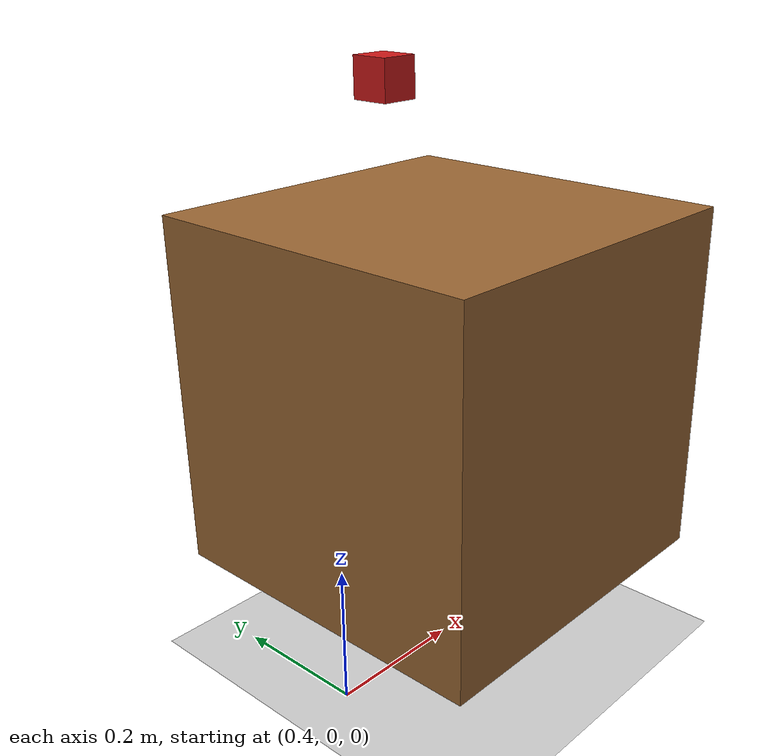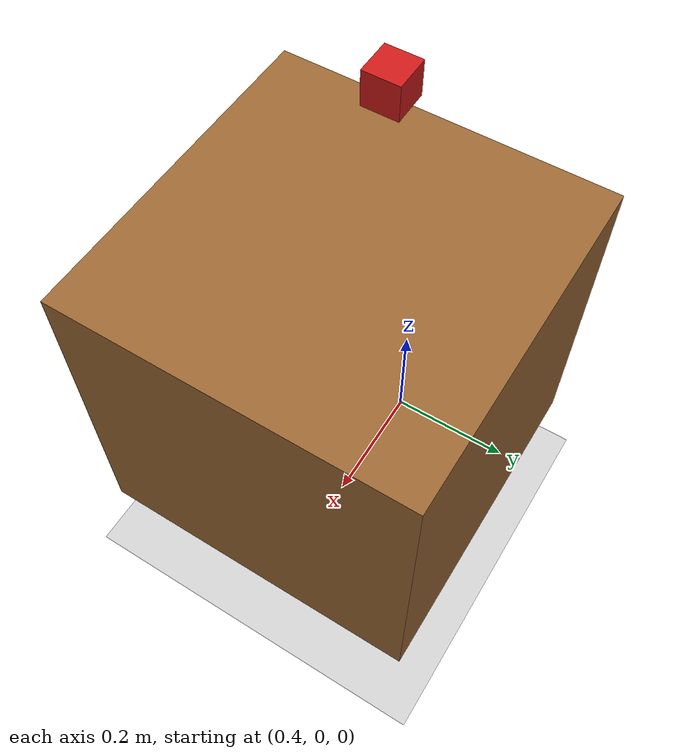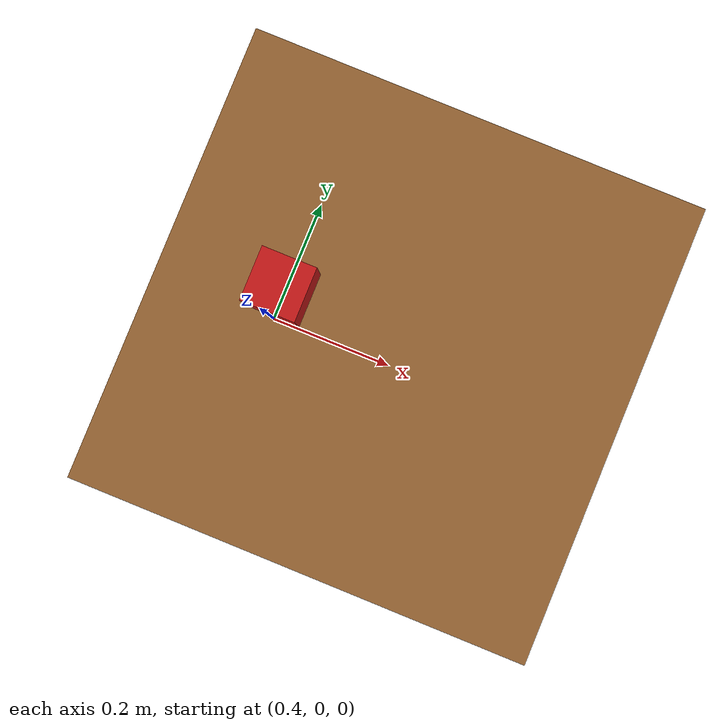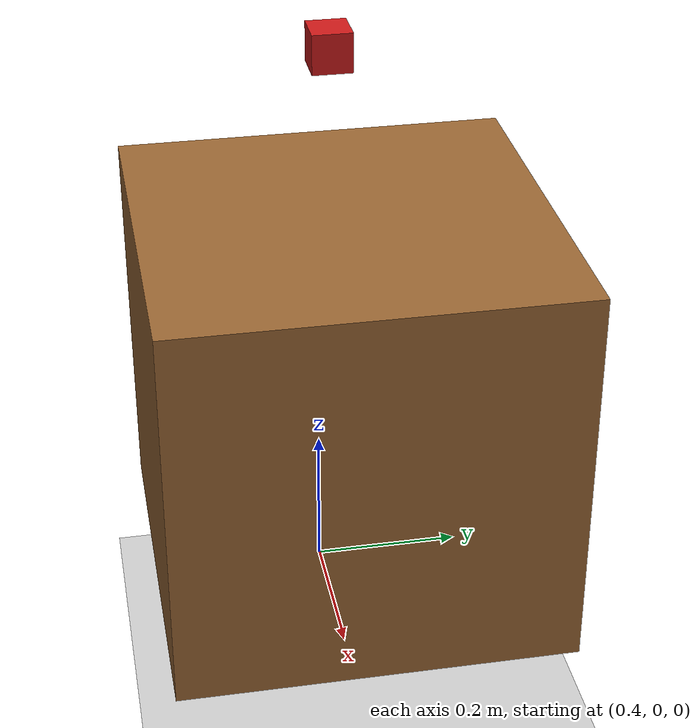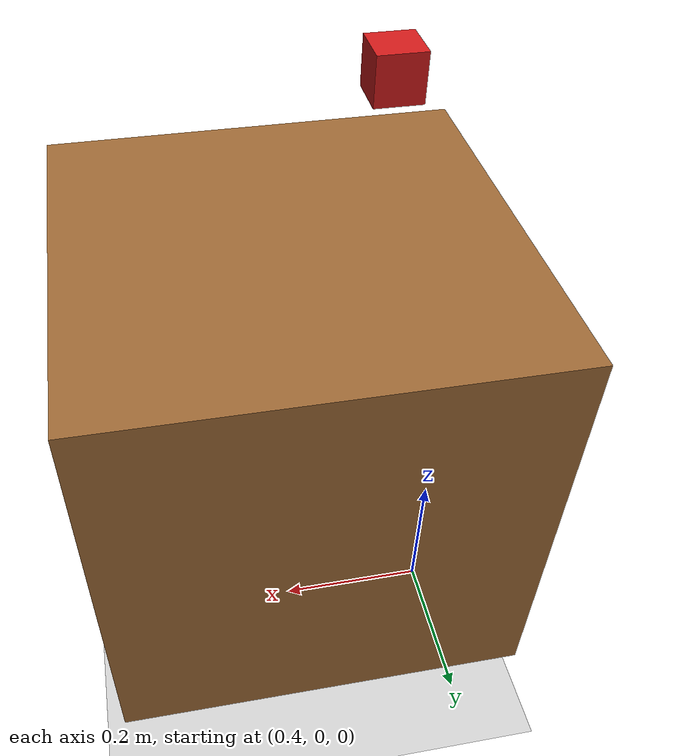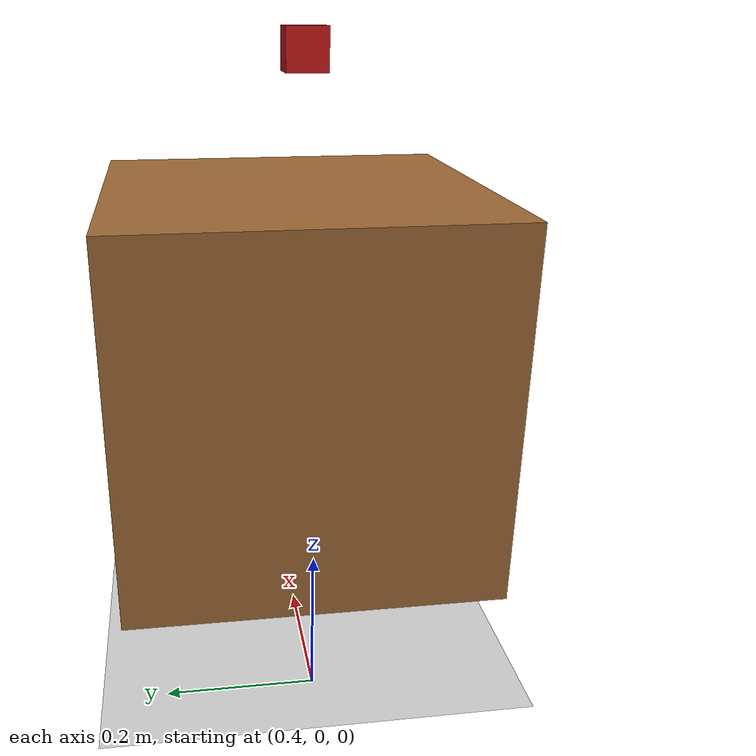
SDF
<?xml version="1.0" ?>
<sdf version="1.8">
  <world name="pick_and_place_world">

    <physics name="1ms" type="ignored">
      <max_step_size>0.001</max_step_size>
      <real_time_factor>1.0</real_time_factor>
    </physics>
    <plugin filename="gz-sim-physics-system" name="gz::sim::systems::Physics"/>
    <plugin filename="gz-sim-scene-broadcaster-system" name="gz::sim::systems::SceneBroadcaster"/>
    <plugin filename="gz-sim-user-commands-system" name="gz::sim::systems::UserCommands"/>

    <light type="directional" name="sun">
      <cast_shadows>true</cast_shadows>
      <pose>0 0 10 0 0 0</pose>
      <diffuse>0.8 0.8 0.8 1</diffuse>
      <specular>0.2 0.2 0.2 1</specular>
      <direction>-0.5 0.1 -0.9</direction>
    </light>

    <model name="ground_plane">
      <static>true</static>
      <link name="link">
        <collision name="collision">
          <geometry><plane><normal>0 0 1</normal><size>100 100</size></plane></geometry>
        </collision>
        <visual name="visual">
          <geometry><plane><normal>0 0 1</normal><size>100 100</size></plane></geometry>
          <material>
            <ambient>0.8 0.8 0.8 1</ambient>
            <diffuse>0.8 0.8 0.8 1</diffuse>
          </material>
        </visual>
      </link>
    </model>

    <model name="table">
      <static>true</static>
      <pose>0.6 0 0.4 0 0 0</pose>
      <link name="link">
        <collision name="collision">
          <geometry><box><size>0.5 0.5 0.5</size></box></geometry>
        </collision>
        <visual name="visual">
          <geometry><box><size>0.5 0.5 0.5</size></box></geometry>
          <material>
            <ambient>0.6 0.4 0.2 1</ambient>
            <diffuse>0.6 0.4 0.2 1</diffuse>
          </material>
        </visual>
      </link>
    </model>

    <model name="target_block">
      <static>false</static>
      <pose>0.5 0.0 0.825 0 0 0</pose>
      <link name="link">
        <inertial>
          <mass>0.1</mass>
          <inertia>
            <ixx>0.0001</ixx>
            <iyy>0.0001</iyy>
            <izz>0.0001</izz>
          </inertia>
        </inertial>
        <collision name="collision">
          <geometry><box><size>0.05 0.05 0.05</size></box></geometry>
        </collision>
        <visual name="visual">
          <geometry><box><size>0.05 0.05 0.05</size></box></geometry>
          <material>
            <ambient>0.8 0.1 0.1 1</ambient>
            <diffuse>0.8 0.1 0.1 1</diffuse>
          </material>
        </visual>
      </link>
    </model>

  </world>
</sdf>
